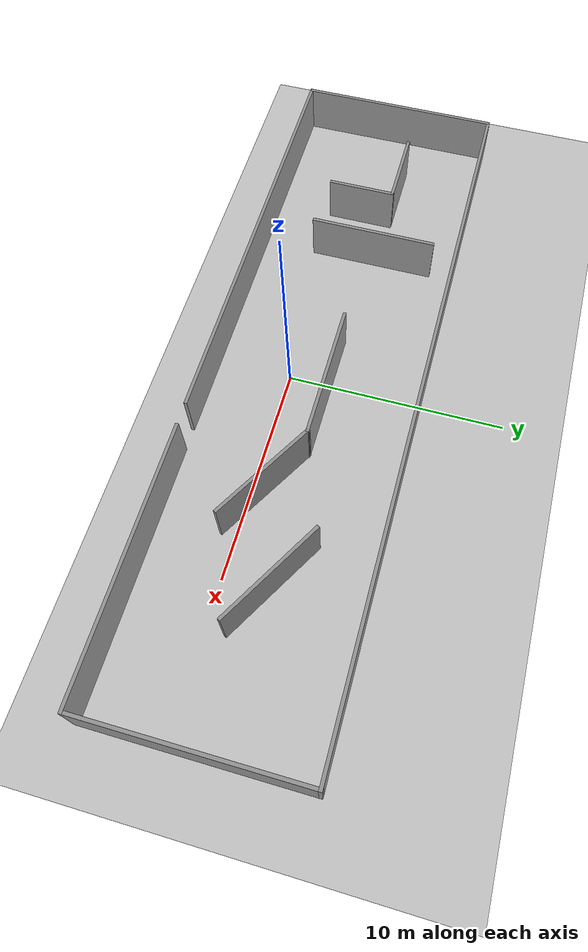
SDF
<sdf version="1.7">
 <world name="default">
  <model name="ground_plane">
   <static>1</static>
   <link name="link">
    <collision name="collision">
     <geometry><plane><normal>0 0 1</normal><size>100 100</size></plane></geometry>
     <surface>
      <contact><collide_bitmask>65535</collide_bitmask></contact>
      <friction><ode><mu>100</mu><mu2>50</mu2></ode></friction>
     </surface>
    </collision>
    <visual name="visual">
     <cast_shadows>0</cast_shadows>
     <geometry><plane><normal>0 0 1</normal><size>100 100</size></plane></geometry>
     <material>
      <script><uri>file://media/materials/scripts/gazebo.material</uri><name>Gazebo/Grey</name></script>
     </material>
    </visual>
   </link>
  </model>
  <light name="sun" type="directional">
   <pose>0 0 10 0 -0 0</pose>
   <diffuse>0.8 0.8 0.8 1</diffuse>
   <specular>0.2 0.2 0.2 1</specular>
   <attenuation>
    <range>1000</range>
    <constant>0.9</constant>
    <linear>0.01</linear>
    <quadratic>0.001</quadratic>
   </attenuation>
   <direction>-0.5 0.1 -0.9</direction>
   <spot><inner_angle>0</inner_angle><outer_angle>0</outer_angle><falloff>0</falloff></spot>
  </light>
  <spherical_coordinates>
   <surface_model>EARTH_WGS84</surface_model>
   <latitude_deg>47.3667</latitude_deg>
   <longitude_deg>8.55</longitude_deg>
   <elevation>500</elevation>
   <heading_deg>0</heading_deg>
  </spherical_coordinates>
  <physics type="ode">
   <ode>
    <solver>
     <type>quick</type>
     <iters>500</iters>
     <sor>1.3</sor>
     <use_dynamic_moi_rescaling>0</use_dynamic_moi_rescaling>
    </solver>
    <constraints>
     <cfm>0</cfm>
     <erp>0.2</erp>
     <contact_max_correcting_vel>100</contact_max_correcting_vel>
     <contact_surface_layer>0.001</contact_surface_layer>
    </constraints>
   </ode>
   <max_step_size>0.001</max_step_size>
   <real_time_factor>1</real_time_factor>
   <real_time_update_rate>1000</real_time_update_rate>
  </physics>
  <gravity>0 0 -9.8</gravity>
  <magnetic_field>6e-06 2.3e-05 -4.2e-05</magnetic_field>
  <atmosphere type="adiabatic"/>
  <scene><ambient>0.4 0.4 0.4 1</ambient><background>0.7 0.7 0.7 1</background><shadows>1</shadows></scene>
  <model name="environment">
   <pose>0.248998 1.31866 0 0 -0 0</pose>
   <link name="Wall_1">
    <collision name="Wall_1_Collision">
     <geometry><box><size>12 0.15 2.5</size></box></geometry>
     <pose>0 0 1.25 0 -0 0</pose>
    </collision>
    <visual name="Wall_1_Visual">
     <pose>0 0 1.25 0 -0 0</pose>
     <geometry><box><size>12 0.15 2.5</size></box></geometry>
     <material>
      <script><uri>file://media/materials/scripts/gazebo.material</uri><name>Gazebo/Grey</name></script>
      <ambient>1 1 1 1</ambient>
     </material>
     <meta><layer>0</layer></meta>
    </visual>
    <pose>10.5 -4.8 0 0 -0 0</pose>
   </link>
   <link name="Wall_10">
    <collision name="Wall_10_Collision">
     <geometry><box><size>5.25 0.15 2.5</size></box></geometry>
     <pose>0 0 1.25 0 -0 0</pose>
    </collision>
    <visual name="Wall_10_Visual">
     <pose>0 0 1.25 0 -0 0</pose>
     <geometry><box><size>5.25 0.15 2.5</size></box></geometry>
     <material>
      <script><uri>file://media/materials/scripts/gazebo.material</uri><name>Gazebo/Grey</name></script>
      <ambient>1 1 1 1</ambient>
     </material>
     <meta><layer>0</layer></meta>
    </visual>
    <pose>5.57112 -0.677592 0 0 -0 -0.523599</pose>
   </link>
   <link name="Wall_12">
    <collision name="Wall_12_Collision">
     <geometry><box><size>5.25 0.15 2.5</size></box></geometry>
     <pose>0 0 1.25 0 -0 0</pose>
    </collision>
    <visual name="Wall_12_Visual">
     <pose>0 0 1.25 0 -0 0</pose>
     <geometry><box><size>5.25 0.15 2.5</size></box></geometry>
     <material>
      <script><uri>file://media/materials/scripts/gazebo.material</uri><name>Gazebo/Grey</name></script>
      <ambient>1 1 1 1</ambient>
     </material>
     <meta><layer>0</layer></meta>
    </visual>
    <pose>9.60261 0.870273 0 0 -0 -0.523599</pose>
   </link>
   <link name="Wall_14">
    <collision name="Wall_14_Collision">
     <geometry><box><size>3.75 0.15 2.5</size></box></geometry>
     <pose>0 0 1.25 0 -0 0</pose>
    </collision>
    <visual name="Wall_14_Visual">
     <pose>0 0 1.25 0 -0 0</pose>
     <geometry><box><size>3.75 0.15 2.5</size></box></geometry>
     <material>
      <script><uri>file://media/materials/scripts/gazebo.material</uri><name>Gazebo/Grey</name></script>
      <ambient>1 1 1 1</ambient>
     </material>
     <meta><layer>0</layer></meta>
    </visual>
    <pose>-12.1593 1.05473 0 0 -0 0</pose>
   </link>
   <link name="Wall_15">
    <collision name="Wall_15_Collision">
     <geometry><box><size>3.25 0.15 2.5</size></box></geometry>
     <pose>0 0 1.25 0 -0 0</pose>
    </collision>
    <visual name="Wall_15_Visual">
     <pose>0 0 1.25 0 -0 0</pose>
     <geometry><box><size>3.25 0.15 2.5</size></box></geometry>
     <material>
      <script><uri>file://media/materials/scripts/gazebo.material</uri><name>Gazebo/Grey</name></script>
      <ambient>1 1 1 1</ambient>
     </material>
     <meta><layer>0</layer></meta>
    </visual>
    <pose>-10.3593 -0.495268 0 0 -0 -1.5708</pose>
   </link>
   <link name="Wall_2">
    <collision name="Wall_2_Collision">
     <geometry><box><size>9.75 0.15 2.5</size></box></geometry>
     <pose>0 0 1.25 0 -0 0</pose>
    </collision>
    <visual name="Wall_2_Visual">
     <pose>0 0 1.25 0 -0 0</pose>
     <geometry><box><size>9.75 0.15 2.5</size></box></geometry>
     <material>
      <script><uri>file://media/materials/scripts/gazebo.material</uri><name>Gazebo/Grey</name></script>
      <ambient>1 1 1 1</ambient>
     </material>
     <meta><layer>0</layer></meta>
    </visual>
    <pose>16.425 -0 0 0 -0 1.5708</pose>
   </link>
   <link name="Wall_3">
    <collision name="Wall_3_Collision">
     <geometry><box><size>33 0.15 2.5</size></box></geometry>
     <pose>0 0 1.25 0 -0 0</pose>
    </collision>
    <visual name="Wall_3_Visual">
     <pose>0 0 1.25 0 -0 0</pose>
     <geometry><box><size>33 0.15 2.5</size></box></geometry>
     <material>
      <script><uri>file://media/materials/scripts/gazebo.material</uri><name>Gazebo/Grey</name></script>
      <ambient>1 1 1 1</ambient>
     </material>
     <meta><layer>0</layer></meta>
    </visual>
    <pose>-0 4.8 0 0 -0 3.14159</pose>
   </link>
   <link name="Wall_4">
    <collision name="Wall_4_Collision">
     <geometry><box><size>9.75 0.15 2.5</size></box></geometry>
     <pose>0 0 1.25 0 -0 0</pose>
    </collision>
    <visual name="Wall_4_Visual">
     <pose>0 0 1.25 0 -0 0</pose>
     <geometry><box><size>9.75 0.15 2.5</size></box></geometry>
     <material>
      <script><uri>file://media/materials/scripts/gazebo.material</uri><name>Gazebo/Grey</name></script>
      <ambient>1 1 1 1</ambient>
     </material>
     <meta><layer>0</layer></meta>
    </visual>
    <pose>-16.425 -0 0 0 -0 -1.5708</pose>
   </link>
   <link name="Wall_5">
    <collision name="Wall_5_Collision">
     <geometry><box><size>20 0.15 2.5</size></box></geometry>
     <pose>0 0 1.25 0 -0 0</pose>
    </collision>
    <visual name="Wall_5_Visual">
     <pose>0 0 1.25 0 -0 0</pose>
     <geometry><box><size>20 0.15 2.5</size></box></geometry>
     <material>
      <script><uri>file://media/materials/scripts/gazebo.material</uri><name>Gazebo/Grey</name></script>
      <ambient>1 1 1 1</ambient>
     </material>
     <meta><layer>0</layer></meta>
    </visual>
    <pose>-6.5 -4.8 0 0 -0 0</pose>
   </link>
   <link name="Wall_7">
    <collision name="Wall_7_Collision">
     <geometry><box><size>6 0.15 2.5</size></box></geometry>
     <pose>0 0 1.25 0 -0 0</pose>
    </collision>
    <visual name="Wall_7_Visual">
     <pose>0 0 1.25 0 -0 0</pose>
     <geometry><box><size>6 0.15 2.5</size></box></geometry>
     <material>
      <script><uri>file://media/materials/scripts/gazebo.material</uri><name>Gazebo/Grey</name></script>
      <ambient>1 1 1 1</ambient>
     </material>
     <meta><layer>0</layer></meta>
    </visual>
    <pose>-7.76781 0.708107 0 0 -0 1.5708</pose>
   </link>
   <link name="Wall_9">
    <collision name="Wall_9_Collision">
     <geometry><box><size>6.25 0.15 2.5</size></box></geometry>
     <pose>0 0 1.25 0 -0 0</pose>
    </collision>
    <visual name="Wall_9_Visual">
     <pose>0 0 1.25 0 -0 0</pose>
     <geometry><box><size>6.25 0.15 2.5</size></box></geometry>
     <material>
      <script><uri>file://media/materials/scripts/gazebo.material</uri><name>Gazebo/Grey</name></script>
      <ambient>1 1 1 1</ambient>
     </material>
     <meta><layer>0</layer></meta>
    </visual>
    <pose>0.312757 0.597408 0 0 -0 0</pose>
   </link>
   <static>1</static>
  </model>
 </world>
</sdf>
